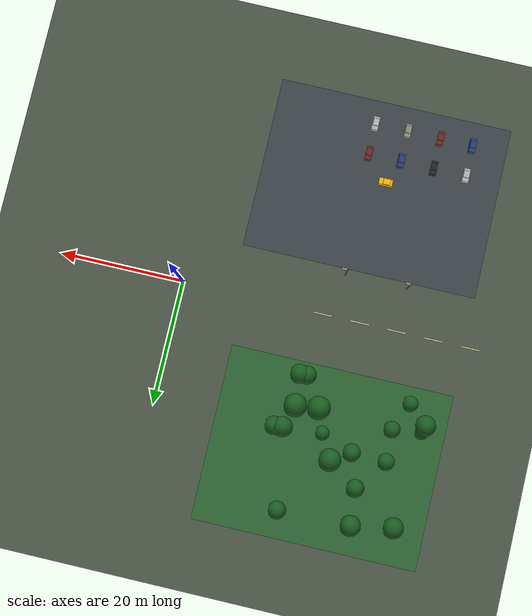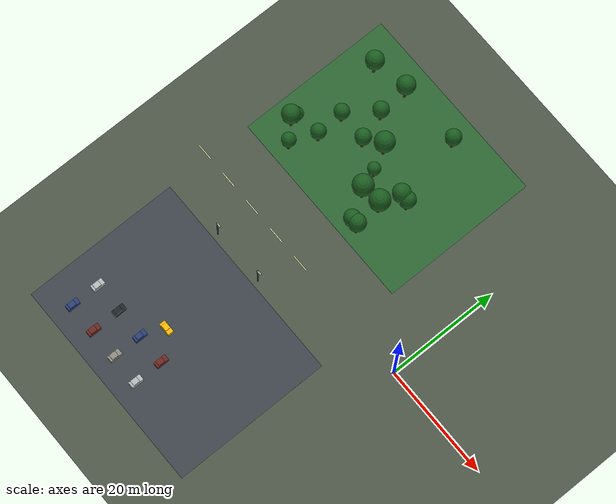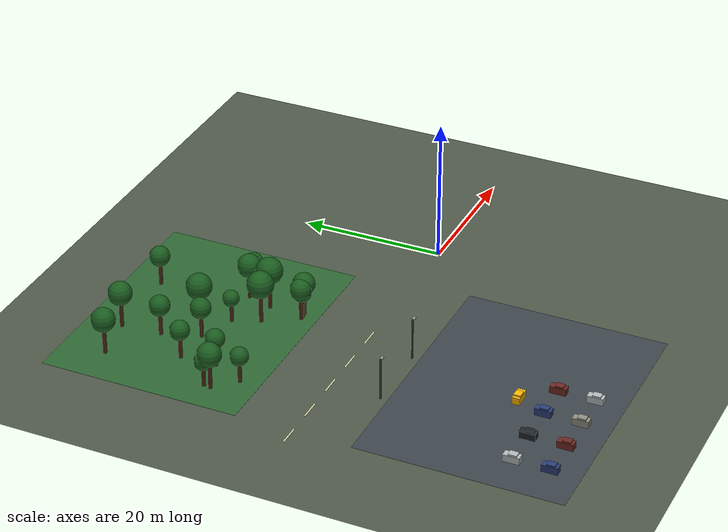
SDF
<sdf version="1.9">
 <world name="gsi_search_world_v2_campus">
  <model name="ground_plane">
   <static>true</static>
   <link name="link">
    <collision name="collision">
     <geometry><plane><normal>0 0 1</normal><size>130 110</size></plane></geometry>
    </collision>
    <visual name="visual">
     <geometry><plane><normal>0 0 1</normal><size>130 110</size></plane></geometry>
     <material>
      <ambient>0.3 0.34 0.28 1</ambient>
      <diffuse>0.3 0.34 0.28 1</diffuse>
      <specular>0.12 0.12 0.12 1</specular>
     </material>
    </visual>
   </link>
  </model>
  <model name="semantic-parking-southwest">
   <static>true</static>
   <pose>-27 -22 0.015 0 0 0</pose>
   <link name="link">
    <visual name="visual">
     <geometry><box><size>38 28 0.02</size></box></geometry>
     <cast_shadows>false</cast_shadows>
     <material>
      <ambient>0.24 0.27 0.29 1</ambient>
      <diffuse>0.24 0.27 0.29 1</diffuse>
      <specular>0.12 0.12 0.12 1</specular>
     </material>
    </visual>
   </link>
  </model>
  <model name="semantic-sports-northwest">
   <static>true</static>
   <pose>-28 22 0.015 0 0 0</pose>
   <link name="link">
    <visual name="visual">
     <geometry><box><size>36 28 0.02</size></box></geometry>
     <cast_shadows>false</cast_shadows>
     <material>
      <ambient>0.18 0.4 0.2 1</ambient>
      <diffuse>0.18 0.4 0.2 1</diffuse>
      <specular>0.12 0.12 0.12 1</specular>
     </material>
    </visual>
   </link>
  </model>
  <model name="road-east-west-marking-01">
   <static>true</static>
   <pose>-47 0 0.04 0 0 0</pose>
   <link name="link">
    <visual name="visual">
     <geometry><box><size>3 0.18 0.025</size></box></geometry>
     <cast_shadows>false</cast_shadows>
     <material>
      <ambient>0.92 0.9 0.68 1</ambient>
      <diffuse>0.92 0.9 0.68 1</diffuse>
      <specular>0.12 0.12 0.12 1</specular>
     </material>
    </visual>
   </link>
  </model>
  <model name="road-east-west-marking-02">
   <static>true</static>
   <pose>-41 0 0.04 0 0 0</pose>
   <link name="link">
    <visual name="visual">
     <geometry><box><size>3 0.18 0.025</size></box></geometry>
     <cast_shadows>false</cast_shadows>
     <material>
      <ambient>0.92 0.9 0.68 1</ambient>
      <diffuse>0.92 0.9 0.68 1</diffuse>
      <specular>0.12 0.12 0.12 1</specular>
     </material>
    </visual>
   </link>
  </model>
  <model name="road-east-west-marking-03">
   <static>true</static>
   <pose>-35 0 0.04 0 0 0</pose>
   <link name="link">
    <visual name="visual">
     <geometry><box><size>3 0.18 0.025</size></box></geometry>
     <cast_shadows>false</cast_shadows>
     <material>
      <ambient>0.92 0.9 0.68 1</ambient>
      <diffuse>0.92 0.9 0.68 1</diffuse>
      <specular>0.12 0.12 0.12 1</specular>
     </material>
    </visual>
   </link>
  </model>
  <model name="road-east-west-marking-04">
   <static>true</static>
   <pose>-29 0 0.04 0 0 0</pose>
   <link name="link">
    <visual name="visual">
     <geometry><box><size>3 0.18 0.025</size></box></geometry>
     <cast_shadows>false</cast_shadows>
     <material>
      <ambient>0.92 0.9 0.68 1</ambient>
      <diffuse>0.92 0.9 0.68 1</diffuse>
      <specular>0.12 0.12 0.12 1</specular>
     </material>
    </visual>
   </link>
  </model>
  <model name="road-east-west-marking-05">
   <static>true</static>
   <pose>-23 0 0.04 0 0 0</pose>
   <link name="link">
    <visual name="visual">
     <geometry><box><size>3 0.18 0.025</size></box></geometry>
     <cast_shadows>false</cast_shadows>
     <material>
      <ambient>0.92 0.9 0.68 1</ambient>
      <diffuse>0.92 0.9 0.68 1</diffuse>
      <specular>0.12 0.12 0.12 1</specular>
     </material>
    </visual>
   </link>
  </model>
  <model name="tree-01">
   <static>true</static>
   <pose>-25.4031 14.6741 0 0 0 0</pose>
   <link name="tree">
    <collision name="trunk_collision">
     <pose>0 0 2.58851 0 0 0</pose>
     <geometry><cylinder><radius>0.32</radius><length>5.17703</length></cylinder></geometry>
    </collision>
    <visual name="trunk">
     <pose>0 0 2.58851 0 0 0</pose>
     <geometry><cylinder><radius>0.28</radius><length>5.17703</length></cylinder></geometry>
     <material>
      <ambient>0.28 0.16 0.08 1</ambient>
      <diffuse>0.28 0.16 0.08 1</diffuse>
      <specular>0.12 0.12 0.12 1</specular>
     </material>
    </visual>
    <visual name="canopy">
     <pose>0 0 5.76869 0 0 0</pose>
     <geometry><sphere><radius>1.84894</radius></sphere></geometry>
     <material>
      <ambient>0.1 0.36 0.12 1</ambient>
      <diffuse>0.1 0.36 0.12 1</diffuse>
      <specular>0.12 0.12 0.12 1</specular>
     </material>
    </visual>
   </link>
  </model>
  <model name="tree-03">
   <static>true</static>
   <pose>-37.1353 15.3207 0 0 0 0</pose>
   <link name="tree">
    <collision name="trunk_collision">
     <pose>0 0 1.87795 0 0 0</pose>
     <geometry><cylinder><radius>0.32</radius><length>3.7559</length></cylinder></geometry>
    </collision>
    <visual name="trunk">
     <pose>0 0 1.87795 0 0 0</pose>
     <geometry><cylinder><radius>0.28</radius><length>3.7559</length></cylinder></geometry>
     <material>
      <ambient>0.28 0.16 0.08 1</ambient>
      <diffuse>0.28 0.16 0.08 1</diffuse>
      <specular>0.12 0.12 0.12 1</specular>
     </material>
    </visual>
    <visual name="canopy">
     <pose>0 0 4.18514 0 0 0</pose>
     <geometry><sphere><radius>1.34139</radius></sphere></geometry>
     <material>
      <ambient>0.1 0.36 0.12 1</ambient>
      <diffuse>0.1 0.36 0.12 1</diffuse>
      <specular>0.12 0.12 0.12 1</specular>
     </material>
    </visual>
   </link>
  </model>
  <model name="tree-04">
   <static>true</static>
   <pose>-21.8425 15.097 0 0 0 0</pose>
   <link name="tree">
    <collision name="trunk_collision">
     <pose>0 0 2.59466 0 0 0</pose>
     <geometry><cylinder><radius>0.32</radius><length>5.18932</length></cylinder></geometry>
    </collision>
    <visual name="trunk">
     <pose>0 0 2.59466 0 0 0</pose>
     <geometry><cylinder><radius>0.28</radius><length>5.18932</length></cylinder></geometry>
     <material>
      <ambient>0.28 0.16 0.08 1</ambient>
      <diffuse>0.28 0.16 0.08 1</diffuse>
      <specular>0.12 0.12 0.12 1</specular>
     </material>
    </visual>
    <visual name="canopy">
     <pose>0 0 5.78239 0 0 0</pose>
     <geometry><sphere><radius>1.85333</radius></sphere></geometry>
     <material>
      <ambient>0.1 0.36 0.12 1</ambient>
      <diffuse>0.1 0.36 0.12 1</diffuse>
      <specular>0.12 0.12 0.12 1</specular>
     </material>
    </visual>
   </link>
  </model>
  <model name="tree-05">
   <static>true</static>
   <pose>-41.7486 14.6389 0 0 0 0</pose>
   <link name="tree">
    <collision name="trunk_collision">
     <pose>0 0 1.66831 0 0 0</pose>
     <geometry><cylinder><radius>0.32</radius><length>3.33661</length></cylinder></geometry>
    </collision>
    <visual name="trunk">
     <pose>0 0 1.66831 0 0 0</pose>
     <geometry><cylinder><radius>0.28</radius><length>3.33661</length></cylinder></geometry>
     <material>
      <ambient>0.28 0.16 0.08 1</ambient>
      <diffuse>0.28 0.16 0.08 1</diffuse>
      <specular>0.12 0.12 0.12 1</specular>
     </material>
    </visual>
    <visual name="canopy">
     <pose>0 0 3.71794 0 0 0</pose>
     <geometry><sphere><radius>1.19165</radius></sphere></geometry>
     <material>
      <ambient>0.1 0.36 0.12 1</ambient>
      <diffuse>0.1 0.36 0.12 1</diffuse>
      <specular>0.12 0.12 0.12 1</specular>
     </material>
    </visual>
   </link>
  </model>
  <model name="tree-06">
   <static>true</static>
   <pose>-19.3635 18.7964 0 0 0 0</pose>
   <link name="tree">
    <collision name="trunk_collision">
     <pose>0 0 2.07027 0 0 0</pose>
     <geometry><cylinder><radius>0.32</radius><length>4.14053</length></cylinder></geometry>
    </collision>
    <visual name="trunk">
     <pose>0 0 2.07027 0 0 0</pose>
     <geometry><cylinder><radius>0.28</radius><length>4.14053</length></cylinder></geometry>
     <material>
      <ambient>0.28 0.16 0.08 1</ambient>
      <diffuse>0.28 0.16 0.08 1</diffuse>
      <specular>0.12 0.12 0.12 1</specular>
     </material>
    </visual>
    <visual name="canopy">
     <pose>0 0 4.61374 0 0 0</pose>
     <geometry><sphere><radius>1.47876</radius></sphere></geometry>
     <material>
      <ambient>0.1 0.36 0.12 1</ambient>
      <diffuse>0.1 0.36 0.12 1</diffuse>
      <specular>0.12 0.12 0.12 1</specular>
     </material>
    </visual>
   </link>
  </model>
  <model name="tree-07">
   <static>true</static>
   <pose>-33.5671 25.2982 0 0 0 0</pose>
   <link name="tree">
    <collision name="trunk_collision">
     <pose>0 0 1.99909 0 0 0</pose>
     <geometry><cylinder><radius>0.32</radius><length>3.99818</length></cylinder></geometry>
    </collision>
    <visual name="trunk">
     <pose>0 0 1.99909 0 0 0</pose>
     <geometry><cylinder><radius>0.28</radius><length>3.99818</length></cylinder></geometry>
     <material>
      <ambient>0.28 0.16 0.08 1</ambient>
      <diffuse>0.28 0.16 0.08 1</diffuse>
      <specular>0.12 0.12 0.12 1</specular>
     </material>
    </visual>
    <visual name="canopy">
     <pose>0 0 4.45511 0 0 0</pose>
     <geometry><sphere><radius>1.42792</radius></sphere></geometry>
     <material>
      <ambient>0.1 0.36 0.12 1</ambient>
      <diffuse>0.1 0.36 0.12 1</diffuse>
      <specular>0.12 0.12 0.12 1</specular>
     </material>
    </visual>
   </link>
  </model>
  <model name="tree-08">
   <static>true</static>
   <pose>-37.3354 20.3237 0 0 0 0</pose>
   <link name="tree">
    <collision name="trunk_collision">
     <pose>0 0 1.8945 0 0 0</pose>
     <geometry><cylinder><radius>0.32</radius><length>3.78901</length></cylinder></geometry>
    </collision>
    <visual name="trunk">
     <pose>0 0 1.8945 0 0 0</pose>
     <geometry><cylinder><radius>0.28</radius><length>3.78901</length></cylinder></geometry>
     <material>
      <ambient>0.28 0.16 0.08 1</ambient>
      <diffuse>0.28 0.16 0.08 1</diffuse>
      <specular>0.12 0.12 0.12 1</specular>
     </material>
    </visual>
    <visual name="canopy">
     <pose>0 0 4.22204 0 0 0</pose>
     <geometry><sphere><radius>1.35322</radius></sphere></geometry>
     <material>
      <ambient>0.1 0.36 0.12 1</ambient>
      <diffuse>0.1 0.36 0.12 1</diffuse>
      <specular>0.12 0.12 0.12 1</specular>
     </material>
    </visual>
   </link>
  </model>
  <model name="tree-09">
   <static>true</static>
   <pose>-40.4544 29.7614 0 0 0 0</pose>
   <link name="tree">
    <collision name="trunk_collision">
     <pose>0 0 2.28915 0 0 0</pose>
     <geometry><cylinder><radius>0.32</radius><length>4.57831</length></cylinder></geometry>
    </collision>
    <visual name="trunk">
     <pose>0 0 2.28915 0 0 0</pose>
     <geometry><cylinder><radius>0.28</radius><length>4.57831</length></cylinder></geometry>
     <material>
      <ambient>0.28 0.16 0.08 1</ambient>
      <diffuse>0.28 0.16 0.08 1</diffuse>
      <specular>0.12 0.12 0.12 1</specular>
     </material>
    </visual>
    <visual name="canopy">
     <pose>0 0 5.10154 0 0 0</pose>
     <geometry><sphere><radius>1.63511</radius></sphere></geometry>
     <material>
      <ambient>0.1 0.36 0.12 1</ambient>
      <diffuse>0.1 0.36 0.12 1</diffuse>
      <specular>0.12 0.12 0.12 1</specular>
     </material>
    </visual>
   </link>
  </model>
  <model name="tree-10">
   <static>true</static>
   <pose>-22.7267 31.1787 0 0 0 0</pose>
   <link name="tree">
    <collision name="trunk_collision">
     <pose>0 0 1.98938 0 0 0</pose>
     <geometry><cylinder><radius>0.32</radius><length>3.97875</length></cylinder></geometry>
    </collision>
    <visual name="trunk">
     <pose>0 0 1.98938 0 0 0</pose>
     <geometry><cylinder><radius>0.28</radius><length>3.97875</length></cylinder></geometry>
     <material>
      <ambient>0.28 0.16 0.08 1</ambient>
      <diffuse>0.28 0.16 0.08 1</diffuse>
      <specular>0.12 0.12 0.12 1</specular>
     </material>
    </visual>
    <visual name="canopy">
     <pose>0 0 4.43346 0 0 0</pose>
     <geometry><sphere><radius>1.42098</radius></sphere></geometry>
     <material>
      <ambient>0.1 0.36 0.12 1</ambient>
      <diffuse>0.1 0.36 0.12 1</diffuse>
      <specular>0.12 0.12 0.12 1</specular>
     </material>
    </visual>
   </link>
  </model>
  <model name="tree-11">
   <static>true</static>
   <pose>-31.8631 20.1512 0 0 0 0</pose>
   <link name="tree">
    <collision name="trunk_collision">
     <pose>0 0 1.99978 0 0 0</pose>
     <geometry><cylinder><radius>0.32</radius><length>3.99956</length></cylinder></geometry>
    </collision>
    <visual name="trunk">
     <pose>0 0 1.99978 0 0 0</pose>
     <geometry><cylinder><radius>0.28</radius><length>3.99956</length></cylinder></geometry>
     <material>
      <ambient>0.28 0.16 0.08 1</ambient>
      <diffuse>0.28 0.16 0.08 1</diffuse>
      <specular>0.12 0.12 0.12 1</specular>
     </material>
    </visual>
    <visual name="canopy">
     <pose>0 0 4.45666 0 0 0</pose>
     <geometry><sphere><radius>1.42842</radius></sphere></geometry>
     <material>
      <ambient>0.1 0.36 0.12 1</ambient>
      <diffuse>0.1 0.36 0.12 1</diffuse>
      <specular>0.12 0.12 0.12 1</specular>
     </material>
    </visual>
   </link>
  </model>
  <model name="tree-12">
   <static>true</static>
   <pose>-22.5941 10.1564 0 0 0 0</pose>
   <link name="tree">
    <collision name="trunk_collision">
     <pose>0 0 2.06231 0 0 0</pose>
     <geometry><cylinder><radius>0.32</radius><length>4.12462</length></cylinder></geometry>
    </collision>
    <visual name="trunk">
     <pose>0 0 2.06231 0 0 0</pose>
     <geometry><cylinder><radius>0.28</radius><length>4.12462</length></cylinder></geometry>
     <material>
      <ambient>0.28 0.16 0.08 1</ambient>
      <diffuse>0.28 0.16 0.08 1</diffuse>
      <specular>0.12 0.12 0.12 1</specular>
     </material>
    </visual>
    <visual name="canopy">
     <pose>0 0 4.59601 0 0 0</pose>
     <geometry><sphere><radius>1.47308</radius></sphere></geometry>
     <material>
      <ambient>0.1 0.36 0.12 1</ambient>
      <diffuse>0.1 0.36 0.12 1</diffuse>
      <specular>0.12 0.12 0.12 1</specular>
     </material>
    </visual>
   </link>
  </model>
  <model name="tree-13">
   <static>true</static>
   <pose>-26.8773 18.2923 0 0 0 0</pose>
   <link name="tree">
    <collision name="trunk_collision">
     <pose>0 0 1.59796 0 0 0</pose>
     <geometry><cylinder><radius>0.32</radius><length>3.19592</length></cylinder></geometry>
    </collision>
    <visual name="trunk">
     <pose>0 0 1.59796 0 0 0</pose>
     <geometry><cylinder><radius>0.28</radius><length>3.19592</length></cylinder></geometry>
     <material>
      <ambient>0.28 0.16 0.08 1</ambient>
      <diffuse>0.28 0.16 0.08 1</diffuse>
      <specular>0.12 0.12 0.12 1</specular>
     </material>
    </visual>
    <visual name="canopy">
     <pose>0 0 3.56117 0 0 0</pose>
     <geometry><sphere><radius>1.1414</radius></sphere></geometry>
     <material>
      <ambient>0.1 0.36 0.12 1</ambient>
      <diffuse>0.1 0.36 0.12 1</diffuse>
      <specular>0.12 0.12 0.12 1</specular>
     </material>
    </visual>
   </link>
  </model>
  <model name="tree-14">
   <static>true</static>
   <pose>-21.4529 10.2267 0 0 0 0</pose>
   <link name="tree">
    <collision name="trunk_collision">
     <pose>0 0 2.16763 0 0 0</pose>
     <geometry><cylinder><radius>0.32</radius><length>4.33526</length></cylinder></geometry>
    </collision>
    <visual name="trunk">
     <pose>0 0 2.16763 0 0 0</pose>
     <geometry><cylinder><radius>0.28</radius><length>4.33526</length></cylinder></geometry>
     <material>
      <ambient>0.28 0.16 0.08 1</ambient>
      <diffuse>0.28 0.16 0.08 1</diffuse>
      <specular>0.12 0.12 0.12 1</specular>
     </material>
    </visual>
    <visual name="canopy">
     <pose>0 0 4.83072 0 0 0</pose>
     <geometry><sphere><radius>1.54831</radius></sphere></geometry>
     <material>
      <ambient>0.1 0.36 0.12 1</ambient>
      <diffuse>0.1 0.36 0.12 1</diffuse>
      <specular>0.12 0.12 0.12 1</specular>
     </material>
    </visual>
   </link>
  </model>
  <model name="tree-15">
   <static>true</static>
   <pose>-39.0923 10.83 0 0 0 0</pose>
   <link name="tree">
    <collision name="trunk_collision">
     <pose>0 0 1.76488 0 0 0</pose>
     <geometry><cylinder><radius>0.32</radius><length>3.52977</length></cylinder></geometry>
    </collision>
    <visual name="trunk">
     <pose>0 0 1.76488 0 0 0</pose>
     <geometry><cylinder><radius>0.28</radius><length>3.52977</length></cylinder></geometry>
     <material>
      <ambient>0.28 0.16 0.08 1</ambient>
      <diffuse>0.28 0.16 0.08 1</diffuse>
      <specular>0.12 0.12 0.12 1</specular>
     </material>
    </visual>
    <visual name="canopy">
     <pose>0 0 3.93317 0 0 0</pose>
     <geometry><sphere><radius>1.26063</radius></sphere></geometry>
     <material>
      <ambient>0.1 0.36 0.12 1</ambient>
      <diffuse>0.1 0.36 0.12 1</diffuse>
      <specular>0.12 0.12 0.12 1</specular>
     </material>
    </visual>
   </link>
  </model>
  <model name="tree-16">
   <static>true</static>
   <pose>-41.8964 13.6182 0 0 0 0</pose>
   <link name="tree">
    <collision name="trunk_collision">
     <pose>0 0 2.29411 0 0 0</pose>
     <geometry><cylinder><radius>0.32</radius><length>4.58822</length></cylinder></geometry>
    </collision>
    <visual name="trunk">
     <pose>0 0 2.29411 0 0 0</pose>
     <geometry><cylinder><radius>0.28</radius><length>4.58822</length></cylinder></geometry>
     <material>
      <ambient>0.28 0.16 0.08 1</ambient>
      <diffuse>0.28 0.16 0.08 1</diffuse>
      <specular>0.12 0.12 0.12 1</specular>
     </material>
    </visual>
    <visual name="canopy">
     <pose>0 0 5.11259 0 0 0</pose>
     <geometry><sphere><radius>1.63865</radius></sphere></geometry>
     <material>
      <ambient>0.1 0.36 0.12 1</ambient>
      <diffuse>0.1 0.36 0.12 1</diffuse>
      <specular>0.12 0.12 0.12 1</specular>
     </material>
    </visual>
   </link>
  </model>
  <model name="tree-17">
   <static>true</static>
   <pose>-20.6952 18.7068 0 0 0 0</pose>
   <link name="tree">
    <collision name="trunk_collision">
     <pose>0 0 2.26001 0 0 0</pose>
     <geometry><cylinder><radius>0.32</radius><length>4.52002</length></cylinder></geometry>
    </collision>
    <visual name="trunk">
     <pose>0 0 2.26001 0 0 0</pose>
     <geometry><cylinder><radius>0.28</radius><length>4.52002</length></cylinder></geometry>
     <material>
      <ambient>0.28 0.16 0.08 1</ambient>
      <diffuse>0.28 0.16 0.08 1</diffuse>
      <specular>0.12 0.12 0.12 1</specular>
     </material>
    </visual>
    <visual name="canopy">
     <pose>0 0 5.03659 0 0 0</pose>
     <geometry><sphere><radius>1.61429</radius></sphere></geometry>
     <material>
      <ambient>0.1 0.36 0.12 1</ambient>
      <diffuse>0.1 0.36 0.12 1</diffuse>
      <specular>0.12 0.12 0.12 1</specular>
     </material>
    </visual>
   </link>
  </model>
  <model name="tree-18">
   <static>true</static>
   <pose>-28.7957 21.9628 0 0 0 0</pose>
   <link name="tree">
    <collision name="trunk_collision">
     <pose>0 0 2.4947 0 0 0</pose>
     <geometry><cylinder><radius>0.32</radius><length>4.98939</length></cylinder></geometry>
    </collision>
    <visual name="trunk">
     <pose>0 0 2.4947 0 0 0</pose>
     <geometry><cylinder><radius>0.28</radius><length>4.98939</length></cylinder></geometry>
     <material>
      <ambient>0.28 0.16 0.08 1</ambient>
      <diffuse>0.28 0.16 0.08 1</diffuse>
      <specular>0.12 0.12 0.12 1</specular>
     </material>
    </visual>
    <visual name="canopy">
     <pose>0 0 5.55961 0 0 0</pose>
     <geometry><sphere><radius>1.78193</radius></sphere></geometry>
     <material>
      <ambient>0.1 0.36 0.12 1</ambient>
      <diffuse>0.1 0.36 0.12 1</diffuse>
      <specular>0.12 0.12 0.12 1</specular>
     </material>
    </visual>
   </link>
  </model>
  <model name="tree-19">
   <static>true</static>
   <pose>-34.0386 30.8798 0 0 0 0</pose>
   <link name="tree">
    <collision name="trunk_collision">
     <pose>0 0 2.30063 0 0 0</pose>
     <geometry><cylinder><radius>0.32</radius><length>4.60127</length></cylinder></geometry>
    </collision>
    <visual name="trunk">
     <pose>0 0 2.30063 0 0 0</pose>
     <geometry><cylinder><radius>0.28</radius><length>4.60127</length></cylinder></geometry>
     <material>
      <ambient>0.28 0.16 0.08 1</ambient>
      <diffuse>0.28 0.16 0.08 1</diffuse>
      <specular>0.12 0.12 0.12 1</specular>
     </material>
    </visual>
    <visual name="canopy">
     <pose>0 0 5.12713 0 0 0</pose>
     <geometry><sphere><radius>1.64331</radius></sphere></geometry>
     <material>
      <ambient>0.1 0.36 0.12 1</ambient>
      <diffuse>0.1 0.36 0.12 1</diffuse>
      <specular>0.12 0.12 0.12 1</specular>
     </material>
    </visual>
   </link>
  </model>
  <model name="tree-20">
   <static>true</static>
   <pose>-22.1294 10.1427 0 0 0 0</pose>
   <link name="tree">
    <collision name="trunk_collision">
     <pose>0 0 1.66326 0 0 0</pose>
     <geometry><cylinder><radius>0.32</radius><length>3.32653</length></cylinder></geometry>
    </collision>
    <visual name="trunk">
     <pose>0 0 1.66326 0 0 0</pose>
     <geometry><cylinder><radius>0.28</radius><length>3.32653</length></cylinder></geometry>
     <material>
      <ambient>0.28 0.16 0.08 1</ambient>
      <diffuse>0.28 0.16 0.08 1</diffuse>
      <specular>0.12 0.12 0.12 1</specular>
     </material>
    </visual>
    <visual name="canopy">
     <pose>0 0 3.7067 0 0 0</pose>
     <geometry><sphere><radius>1.18805</radius></sphere></geometry>
     <material>
      <ambient>0.1 0.36 0.12 1</ambient>
      <diffuse>0.1 0.36 0.12 1</diffuse>
      <specular>0.12 0.12 0.12 1</specular>
     </material>
    </visual>
   </link>
  </model>
  <model name="parked-vehicle-01">
   <static>true</static>
   <pose>-40.3333 -32 0 0 0 1.5708</pose>
   <link name="body">
    <collision name="body_collision">
     <pose>0 0 0.5 0 0 0</pose>
     <geometry><box><size>2.2 1.05 1.0</size></box></geometry>
    </collision>
    <visual name="body_visual">
     <pose>0 0 0.5 0 0 0</pose>
     <geometry><box><size>2.2 1.05 1.0</size></box></geometry>
     <material>
      <ambient>0.16 0.24 0.46 1</ambient>
      <diffuse>0.16 0.24 0.46 1</diffuse>
      <specular>0.12 0.12 0.12 1</specular>
     </material>
    </visual>
    <visual name="roof">
     <pose>-0.15 0 1.05 0 0 0</pose>
     <geometry><box><size>1.15 0.94 0.35</size></box></geometry>
     <material>
      <ambient>0.16 0.24 0.46 1</ambient>
      <diffuse>0.16 0.24 0.46 1</diffuse>
      <specular>0.12 0.12 0.12 1</specular>
     </material>
    </visual>
   </link>
  </model>
  <model name="parked-vehicle-02">
   <static>true</static>
   <pose>-40.3333 -27 0 0 0 1.5708</pose>
   <link name="body">
    <collision name="body_collision">
     <pose>0 0 0.5 0 0 0</pose>
     <geometry><box><size>2.2 1.05 1.0</size></box></geometry>
    </collision>
    <visual name="body_visual">
     <pose>0 0 0.5 0 0 0</pose>
     <geometry><box><size>2.2 1.05 1.0</size></box></geometry>
     <material>
      <ambient>0.7 0.72 0.73 1</ambient>
      <diffuse>0.7 0.72 0.73 1</diffuse>
      <specular>0.12 0.12 0.12 1</specular>
     </material>
    </visual>
    <visual name="roof">
     <pose>-0.15 0 1.05 0 0 0</pose>
     <geometry><box><size>1.15 0.94 0.35</size></box></geometry>
     <material>
      <ambient>0.7 0.72 0.73 1</ambient>
      <diffuse>0.7 0.72 0.73 1</diffuse>
      <specular>0.12 0.12 0.12 1</specular>
     </material>
    </visual>
   </link>
  </model>
  <model name="parked-vehicle-03">
   <static>true</static>
   <pose>-35 -32 0 0 0 1.5708</pose>
   <link name="body">
    <collision name="body_collision">
     <pose>0 0 0.5 0 0 0</pose>
     <geometry><box><size>2.2 1.05 1.0</size></box></geometry>
    </collision>
    <visual name="body_visual">
     <pose>0 0 0.5 0 0 0</pose>
     <geometry><box><size>2.2 1.05 1.0</size></box></geometry>
     <material>
      <ambient>0.42 0.15 0.13 1</ambient>
      <diffuse>0.42 0.15 0.13 1</diffuse>
      <specular>0.12 0.12 0.12 1</specular>
     </material>
    </visual>
    <visual name="roof">
     <pose>-0.15 0 1.05 0 0 0</pose>
     <geometry><box><size>1.15 0.94 0.35</size></box></geometry>
     <material>
      <ambient>0.42 0.15 0.13 1</ambient>
      <diffuse>0.42 0.15 0.13 1</diffuse>
      <specular>0.12 0.12 0.12 1</specular>
     </material>
    </visual>
   </link>
  </model>
  <model name="parked-vehicle-04">
   <static>true</static>
   <pose>-35 -27 0 0 0 1.5708</pose>
   <link name="body">
    <collision name="body_collision">
     <pose>0 0 0.5 0 0 0</pose>
     <geometry><box><size>2.2 1.05 1.0</size></box></geometry>
    </collision>
    <visual name="body_visual">
     <pose>0 0 0.5 0 0 0</pose>
     <geometry><box><size>2.2 1.05 1.0</size></box></geometry>
     <material>
      <ambient>0.12 0.14 0.16 1</ambient>
      <diffuse>0.12 0.14 0.16 1</diffuse>
      <specular>0.12 0.12 0.12 1</specular>
     </material>
    </visual>
    <visual name="roof">
     <pose>-0.15 0 1.05 0 0 0</pose>
     <geometry><box><size>1.15 0.94 0.35</size></box></geometry>
     <material>
      <ambient>0.12 0.14 0.16 1</ambient>
      <diffuse>0.12 0.14 0.16 1</diffuse>
      <specular>0.12 0.12 0.12 1</specular>
     </material>
    </visual>
   </link>
  </model>
  <model name="parked-vehicle-05">
   <static>true</static>
   <pose>-29.6667 -32 0 0 0 1.5708</pose>
   <link name="body">
    <collision name="body_collision">
     <pose>0 0 0.5 0 0 0</pose>
     <geometry><box><size>2.2 1.05 1.0</size></box></geometry>
    </collision>
    <visual name="body_visual">
     <pose>0 0 0.5 0 0 0</pose>
     <geometry><box><size>2.2 1.05 1.0</size></box></geometry>
     <material>
      <ambient>0.55 0.55 0.5 1</ambient>
      <diffuse>0.55 0.55 0.5 1</diffuse>
      <specular>0.12 0.12 0.12 1</specular>
     </material>
    </visual>
    <visual name="roof">
     <pose>-0.15 0 1.05 0 0 0</pose>
     <geometry><box><size>1.15 0.94 0.35</size></box></geometry>
     <material>
      <ambient>0.55 0.55 0.5 1</ambient>
      <diffuse>0.55 0.55 0.5 1</diffuse>
      <specular>0.12 0.12 0.12 1</specular>
     </material>
    </visual>
   </link>
  </model>
  <model name="parked-vehicle-06">
   <static>true</static>
   <pose>-29.6667 -27 0 0 0 1.5708</pose>
   <link name="body">
    <collision name="body_collision">
     <pose>0 0 0.5 0 0 0</pose>
     <geometry><box><size>2.2 1.05 1.0</size></box></geometry>
    </collision>
    <visual name="body_visual">
     <pose>0 0 0.5 0 0 0</pose>
     <geometry><box><size>2.2 1.05 1.0</size></box></geometry>
     <material>
      <ambient>0.16 0.24 0.46 1</ambient>
      <diffuse>0.16 0.24 0.46 1</diffuse>
      <specular>0.12 0.12 0.12 1</specular>
     </material>
    </visual>
    <visual name="roof">
     <pose>-0.15 0 1.05 0 0 0</pose>
     <geometry><box><size>1.15 0.94 0.35</size></box></geometry>
     <material>
      <ambient>0.16 0.24 0.46 1</ambient>
      <diffuse>0.16 0.24 0.46 1</diffuse>
      <specular>0.12 0.12 0.12 1</specular>
     </material>
    </visual>
   </link>
  </model>
  <model name="parked-vehicle-07">
   <static>true</static>
   <pose>-24.3333 -32 0 0 0 1.5708</pose>
   <link name="body">
    <collision name="body_collision">
     <pose>0 0 0.5 0 0 0</pose>
     <geometry><box><size>2.2 1.05 1.0</size></box></geometry>
    </collision>
    <visual name="body_visual">
     <pose>0 0 0.5 0 0 0</pose>
     <geometry><box><size>2.2 1.05 1.0</size></box></geometry>
     <material>
      <ambient>0.7 0.72 0.73 1</ambient>
      <diffuse>0.7 0.72 0.73 1</diffuse>
      <specular>0.12 0.12 0.12 1</specular>
     </material>
    </visual>
    <visual name="roof">
     <pose>-0.15 0 1.05 0 0 0</pose>
     <geometry><box><size>1.15 0.94 0.35</size></box></geometry>
     <material>
      <ambient>0.7 0.72 0.73 1</ambient>
      <diffuse>0.7 0.72 0.73 1</diffuse>
      <specular>0.12 0.12 0.12 1</specular>
     </material>
    </visual>
   </link>
  </model>
  <model name="parked-vehicle-08">
   <static>true</static>
   <pose>-24.3333 -27 0 0 0 1.5708</pose>
   <link name="body">
    <collision name="body_collision">
     <pose>0 0 0.5 0 0 0</pose>
     <geometry><box><size>2.2 1.05 1.0</size></box></geometry>
    </collision>
    <visual name="body_visual">
     <pose>0 0 0.5 0 0 0</pose>
     <geometry><box><size>2.2 1.05 1.0</size></box></geometry>
     <material>
      <ambient>0.42 0.15 0.13 1</ambient>
      <diffuse>0.42 0.15 0.13 1</diffuse>
      <specular>0.12 0.12 0.12 1</specular>
     </material>
    </visual>
    <visual name="roof">
     <pose>-0.15 0 1.05 0 0 0</pose>
     <geometry><box><size>1.15 0.94 0.35</size></box></geometry>
     <material>
      <ambient>0.42 0.15 0.13 1</ambient>
      <diffuse>0.42 0.15 0.13 1</diffuse>
      <specular>0.12 0.12 0.12 1</specular>
     </material>
    </visual>
   </link>
  </model>
  <model name="utility-pole-01">
   <static>true</static>
   <pose>-35 -7 3 0 0 0</pose>
   <link name="link">
    <collision name="collision"><geometry><box><size>0.18 0.18 6</size></box></geometry></collision>
    <visual name="visual">
     <geometry><box><size>0.18 0.18 6</size></box></geometry>
     <material>
      <ambient>0.24 0.25 0.24 1</ambient>
      <diffuse>0.24 0.25 0.24 1</diffuse>
      <specular>0.12 0.12 0.12 1</specular>
     </material>
    </visual>
   </link>
  </model>
  <model name="utility-pole-01-lamp">
   <static>true</static>
   <pose>-34.62 -7 5.85 0 0 0</pose>
   <link name="link">
    <visual name="visual">
     <geometry><box><size>0.8 0.28 0.22</size></box></geometry>
     <material>
      <ambient>0.66 0.65 0.57 1</ambient>
      <diffuse>0.66 0.65 0.57 1</diffuse>
      <specular>0.12 0.12 0.12 1</specular>
     </material>
    </visual>
   </link>
  </model>
  <model name="utility-pole-02">
   <static>true</static>
   <pose>-25 -7 3 0 0 0</pose>
   <link name="link">
    <collision name="collision"><geometry><box><size>0.18 0.18 6</size></box></geometry></collision>
    <visual name="visual">
     <geometry><box><size>0.18 0.18 6</size></box></geometry>
     <material>
      <ambient>0.24 0.25 0.24 1</ambient>
      <diffuse>0.24 0.25 0.24 1</diffuse>
      <specular>0.12 0.12 0.12 1</specular>
     </material>
    </visual>
   </link>
  </model>
  <model name="utility-pole-02-lamp">
   <static>true</static>
   <pose>-24.62 -7 5.85 0 0 0</pose>
   <link name="link">
    <visual name="visual">
     <geometry><box><size>0.8 0.28 0.22</size></box></geometry>
     <material>
      <ambient>0.66 0.65 0.57 1</ambient>
      <diffuse>0.66 0.65 0.57 1</diffuse>
      <specular>0.12 0.12 0.12 1</specular>
     </material>
    </visual>
   </link>
  </model>
  <model name="yellow_search_van">
   <static>true</static>
   <pose>-28 -23 0 0 0 0</pose>
   <link name="body">
    <collision name="body_collision">
     <pose>0 0 0.5 0 0 0</pose>
     <geometry><box><size>2.2 1.05 1.0</size></box></geometry>
    </collision>
    <visual name="yellow_body">
     <pose>0 0 0.5 0 0 0</pose>
     <geometry><box><size>2.2 1.05 1.0</size></box></geometry>
     <material>
      <ambient>1 0.72 0.02 1</ambient>
      <diffuse>1 0.72 0.02 1</diffuse>
      <specular>0.12 0.12 0.12 1</specular>
     </material>
    </visual>
    <visual name="roof">
     <pose>-0.15 0 1.05 0 0 0</pose>
     <geometry><box><size>1.15 0.94 0.35</size></box></geometry>
     <material>
      <ambient>1 0.72 0.02 1</ambient>
      <diffuse>1 0.72 0.02 1</diffuse>
      <specular>0.12 0.12 0.12 1</specular>
     </material>
    </visual>
   </link>
  </model>
 </world>
</sdf>
